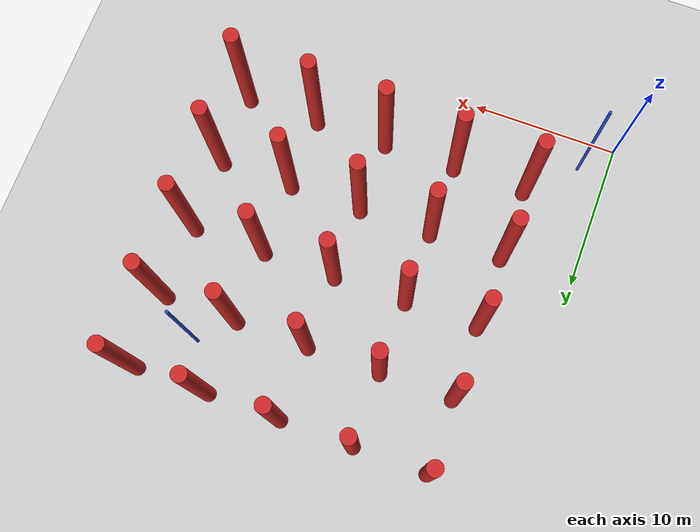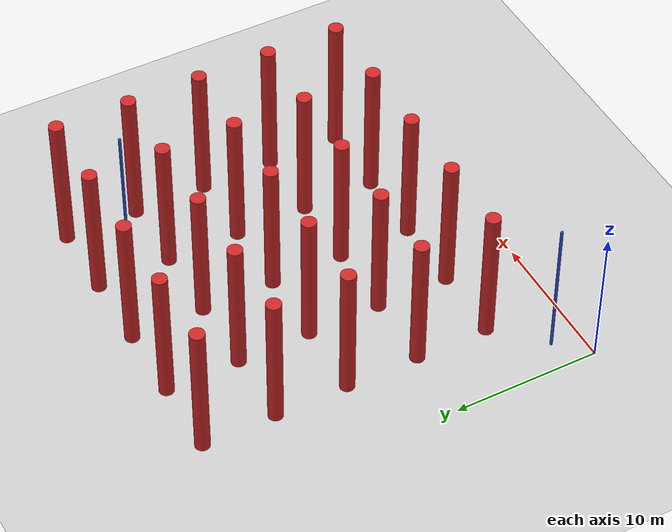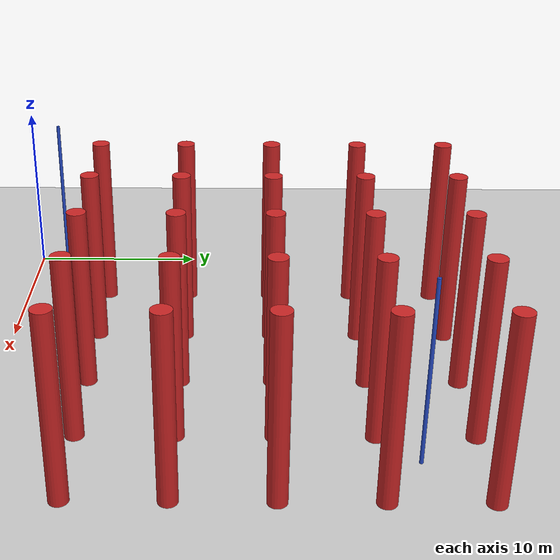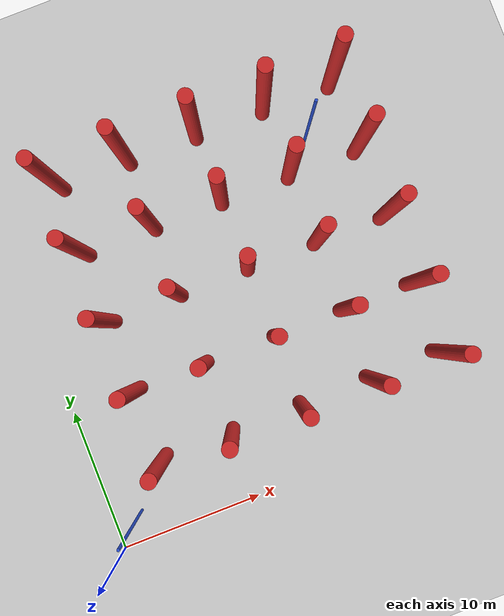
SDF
<sdf version='1.4'>
  <world name='default'>
  <include>
    <uri>model://sun</uri>
  </include>
    <model name='ground_plane'>
      <static>1</static>
      <link name='link'>
        <collision name='collision'>
          <geometry>
            <plane>
              <normal>0 0 1</normal>
              <size>100 100</size>
            </plane>
          </geometry>
          <surface>
            <friction>
              <ode>
                <mu>100</mu>
                <mu2>50</mu2>
              </ode>
            </friction>
            <bounce/>
            <contact>
              <ode/>
            </contact>
          </surface>
          <max_contacts>9</max_contacts>
        </collision>
        <visual name='visual'>
          <cast_shadows>0</cast_shadows>
          <geometry>
            <plane>
              <normal>0 0 1</normal>
              <size>100 100</size>
            </plane>
          </geometry>
          <material>
            <script>
              <uri>file://media/materials/scripts/gazebo.material</uri>
              <name>Gazebo/Grey</name>
            </script>
          </material>
        </visual>
        <velocity_decay>
          <linear>0</linear>
          <angular>0</angular>
        </velocity_decay>
        <self_collide>0</self_collide>
        <kinematic>0</kinematic>
        <gravity>1</gravity>
      </link>
    </model>
    <physics type='ode'>
      <max_step_size>0.01</max_step_size>
      <real_time_factor>1</real_time_factor>
      <real_time_update_rate>100</real_time_update_rate>
      <gravity>0 0 -9.8</gravity>
    </physics>
    <scene>
      <ambient>0.10 0.10 0.10 1</ambient>
      <background>0.7 0.7 0.7 1</background>
      <shadows>1</shadows>
    </scene>
    <spherical_coordinates>
      <surface_model>EARTH_WGS84</surface_model>
      <latitude_deg>0</latitude_deg>
      <longitude_deg>0</longitude_deg>
      <elevation>0</elevation>
      <heading_deg>0</heading_deg>
    </spherical_coordinates>
    <model name='cylinder_1'>
      <pose>5 5 5 0 -0 0</pose>
      <link name='link'>
        <inertial>
          <mass>1000</mass>
          <inertia>
            <ixx>1000</ixx>
            <ixy>0</ixy>
            <ixz>0</ixz>
            <iyy>1000</iyy>
            <iyz>0</iyz>
            <izz>1000</izz>
          </inertia>
        </inertial>
        <collision name='collision'>
          <geometry>
            <cylinder>
              <radius>0.5</radius>
              <length>10</length>
            </cylinder>
          </geometry>
          <max_contacts>9</max_contacts>
          <surface>
            <bounce/>
            <friction>
              <ode/>
            </friction>
            <contact>
              <ode/>
            </contact>
          </surface>
        </collision>
        <visual name='visual'>
          <geometry>
            <cylinder>
              <radius>0.5</radius>
              <length>10</length>
            </cylinder>
          </geometry>
          <material>
            <script>
              <uri>file://media/materials/scripts/gazebo.material</uri>
              <name>Gazebo/Red</name>
            </script>
          </material>
        </visual>
        <velocity_decay>
          <linear>0</linear>
          <angular>0</angular>
        </velocity_decay>
        <self_collide>0</self_collide>
        <kinematic>0</kinematic>
        <gravity>1</gravity>
      </link>
      <static>1</static>
    </model>
    <model name='cylinder_2'>
      <pose>5 10 5 0 -0 0</pose>
      <link name='link'>
        <inertial>
          <mass>1000</mass>
          <inertia>
            <ixx>1000</ixx>
            <ixy>0</ixy>
            <ixz>0</ixz>
            <iyy>1000</iyy>
            <iyz>0</iyz>
            <izz>1000</izz>
          </inertia>
        </inertial>
        <collision name='collision'>
          <geometry>
            <cylinder>
              <radius>0.5</radius>
              <length>10</length>
            </cylinder>
          </geometry>
          <max_contacts>9</max_contacts>
          <surface>
            <bounce/>
            <friction>
              <ode/>
            </friction>
            <contact>
              <ode/>
            </contact>
          </surface>
        </collision>
        <visual name='visual'>
          <geometry>
            <cylinder>
              <radius>0.5</radius>
              <length>10</length>
            </cylinder>
          </geometry>
          <material>
            <script>
              <uri>file://media/materials/scripts/gazebo.material</uri>
              <name>Gazebo/Red</name>
            </script>
          </material>
        </visual>
        <velocity_decay>
          <linear>0</linear>
          <angular>0</angular>
        </velocity_decay>
        <self_collide>0</self_collide>
        <kinematic>0</kinematic>
        <gravity>1</gravity>
      </link>
      <static>1</static>
    </model>
    <model name='cylinder_3'>
      <pose>5 15 5 0 -0 0</pose>
      <link name='link'>
        <inertial>
          <mass>1000</mass>
          <inertia>
            <ixx>1000</ixx>
            <ixy>0</ixy>
            <ixz>0</ixz>
            <iyy>1000</iyy>
            <iyz>0</iyz>
            <izz>1000</izz>
          </inertia>
        </inertial>
        <collision name='collision'>
          <geometry>
            <cylinder>
              <radius>0.5</radius>
              <length>10</length>
            </cylinder>
          </geometry>
          <max_contacts>9</max_contacts>
          <surface>
            <bounce/>
            <friction>
              <ode/>
            </friction>
            <contact>
              <ode/>
            </contact>
          </surface>
        </collision>
        <visual name='visual'>
          <geometry>
            <cylinder>
              <radius>0.5</radius>
              <length>10</length>
            </cylinder>
          </geometry>
          <material>
            <script>
              <uri>file://media/materials/scripts/gazebo.material</uri>
              <name>Gazebo/Red</name>
            </script>
          </material>
        </visual>
        <velocity_decay>
          <linear>0</linear>
          <angular>0</angular>
        </velocity_decay>
        <self_collide>0</self_collide>
        <kinematic>0</kinematic>
        <gravity>1</gravity>
      </link>
      <static>1</static>
    </model>
    <model name='cylinder_4'>
      <pose>5 20 5 0 -0 0</pose>
      <link name='link'>
        <inertial>
          <mass>1000</mass>
          <inertia>
            <ixx>1000</ixx>
            <ixy>0</ixy>
            <ixz>0</ixz>
            <iyy>1000</iyy>
            <iyz>0</iyz>
            <izz>1000</izz>
          </inertia>
        </inertial>
        <collision name='collision'>
          <geometry>
            <cylinder>
              <radius>0.5</radius>
              <length>10</length>
            </cylinder>
          </geometry>
          <max_contacts>9</max_contacts>
          <surface>
            <bounce/>
            <friction>
              <ode/>
            </friction>
            <contact>
              <ode/>
            </contact>
          </surface>
        </collision>
        <visual name='visual'>
          <geometry>
            <cylinder>
              <radius>0.5</radius>
              <length>10</length>
            </cylinder>
          </geometry>
          <material>
            <script>
              <uri>file://media/materials/scripts/gazebo.material</uri>
              <name>Gazebo/Red</name>
            </script>
          </material>
        </visual>
        <velocity_decay>
          <linear>0</linear>
          <angular>0</angular>
        </velocity_decay>
        <self_collide>0</self_collide>
        <kinematic>0</kinematic>
        <gravity>1</gravity>
      </link>
      <static>1</static>
    </model>
    <model name='cylinder_5'>
      <pose>5 25 5 0 -0 0</pose>
      <link name='link'>
        <inertial>
          <mass>1000</mass>
          <inertia>
            <ixx>1000</ixx>
            <ixy>0</ixy>
            <ixz>0</ixz>
            <iyy>1000</iyy>
            <iyz>0</iyz>
            <izz>1000</izz>
          </inertia>
        </inertial>
        <collision name='collision'>
          <geometry>
            <cylinder>
              <radius>0.5</radius>
              <length>10</length>
            </cylinder>
          </geometry>
          <max_contacts>9</max_contacts>
          <surface>
            <bounce/>
            <friction>
              <ode/>
            </friction>
            <contact>
              <ode/>
            </contact>
          </surface>
        </collision>
        <visual name='visual'>
          <geometry>
            <cylinder>
              <radius>0.5</radius>
              <length>10</length>
            </cylinder>
          </geometry>
          <material>
            <script>
              <uri>file://media/materials/scripts/gazebo.material</uri>
              <name>Gazebo/Red</name>
            </script>
          </material>
        </visual>
        <velocity_decay>
          <linear>0</linear>
          <angular>0</angular>
        </velocity_decay>
        <self_collide>0</self_collide>
        <kinematic>0</kinematic>
        <gravity>1</gravity>
      </link>
      <static>1</static>
    </model>
    <model name='cylinder_6'>
      <pose>10 5 5 0 -0 0</pose>
      <link name='link'>
        <inertial>
          <mass>1000</mass>
          <inertia>
            <ixx>1000</ixx>
            <ixy>0</ixy>
            <ixz>0</ixz>
            <iyy>1000</iyy>
            <iyz>0</iyz>
            <izz>1000</izz>
          </inertia>
        </inertial>
        <collision name='collision'>
          <geometry>
            <cylinder>
              <radius>0.5</radius>
              <length>10</length>
            </cylinder>
          </geometry>
          <max_contacts>9</max_contacts>
          <surface>
            <bounce/>
            <friction>
              <ode/>
            </friction>
            <contact>
              <ode/>
            </contact>
          </surface>
        </collision>
        <visual name='visual'>
          <geometry>
            <cylinder>
              <radius>0.5</radius>
              <length>10</length>
            </cylinder>
          </geometry>
          <material>
            <script>
              <uri>file://media/materials/scripts/gazebo.material</uri>
              <name>Gazebo/Red</name>
            </script>
          </material>
        </visual>
        <velocity_decay>
          <linear>0</linear>
          <angular>0</angular>
        </velocity_decay>
        <self_collide>0</self_collide>
        <kinematic>0</kinematic>
        <gravity>1</gravity>
      </link>
      <static>1</static>
    </model>
    <model name='cylinder_7'>
      <pose>10 10 5 0 -0 0</pose>
      <link name='link'>
        <inertial>
          <mass>1000</mass>
          <inertia>
            <ixx>1000</ixx>
            <ixy>0</ixy>
            <ixz>0</ixz>
            <iyy>1000</iyy>
            <iyz>0</iyz>
            <izz>1000</izz>
          </inertia>
        </inertial>
        <collision name='collision'>
          <geometry>
            <cylinder>
              <radius>0.5</radius>
              <length>10</length>
            </cylinder>
          </geometry>
          <max_contacts>9</max_contacts>
          <surface>
            <bounce/>
            <friction>
              <ode/>
            </friction>
            <contact>
              <ode/>
            </contact>
          </surface>
        </collision>
        <visual name='visual'>
          <geometry>
            <cylinder>
              <radius>0.5</radius>
              <length>10</length>
            </cylinder>
          </geometry>
          <material>
            <script>
              <uri>file://media/materials/scripts/gazebo.material</uri>
              <name>Gazebo/Red</name>
            </script>
          </material>
        </visual>
        <velocity_decay>
          <linear>0</linear>
          <angular>0</angular>
        </velocity_decay>
        <self_collide>0</self_collide>
        <kinematic>0</kinematic>
        <gravity>1</gravity>
      </link>
      <static>1</static>
    </model>
    <model name='cylinder_8'>
      <pose>10 15 5 0 -0 0</pose>
      <link name='link'>
        <inertial>
          <mass>1000</mass>
          <inertia>
            <ixx>1000</ixx>
            <ixy>0</ixy>
            <ixz>0</ixz>
            <iyy>1000</iyy>
            <iyz>0</iyz>
            <izz>1000</izz>
          </inertia>
        </inertial>
        <collision name='collision'>
          <geometry>
            <cylinder>
              <radius>0.5</radius>
              <length>10</length>
            </cylinder>
          </geometry>
          <max_contacts>9</max_contacts>
          <surface>
            <bounce/>
            <friction>
              <ode/>
            </friction>
            <contact>
              <ode/>
            </contact>
          </surface>
        </collision>
        <visual name='visual'>
          <geometry>
            <cylinder>
              <radius>0.5</radius>
              <length>10</length>
            </cylinder>
          </geometry>
          <material>
            <script>
              <uri>file://media/materials/scripts/gazebo.material</uri>
              <name>Gazebo/Red</name>
            </script>
          </material>
        </visual>
        <velocity_decay>
          <linear>0</linear>
          <angular>0</angular>
        </velocity_decay>
        <self_collide>0</self_collide>
        <kinematic>0</kinematic>
        <gravity>1</gravity>
      </link>
      <static>1</static>
    </model>
    <model name='cylinder_9'>
      <pose>10 20 5 0 -0 0</pose>
      <link name='link'>
        <inertial>
          <mass>1000</mass>
          <inertia>
            <ixx>1000</ixx>
            <ixy>0</ixy>
            <ixz>0</ixz>
            <iyy>1000</iyy>
            <iyz>0</iyz>
            <izz>1000</izz>
          </inertia>
        </inertial>
        <collision name='collision'>
          <geometry>
            <cylinder>
              <radius>0.5</radius>
              <length>10</length>
            </cylinder>
          </geometry>
          <max_contacts>9</max_contacts>
          <surface>
            <bounce/>
            <friction>
              <ode/>
            </friction>
            <contact>
              <ode/>
            </contact>
          </surface>
        </collision>
        <visual name='visual'>
          <geometry>
            <cylinder>
              <radius>0.5</radius>
              <length>10</length>
            </cylinder>
          </geometry>
          <material>
            <script>
              <uri>file://media/materials/scripts/gazebo.material</uri>
              <name>Gazebo/Red</name>
            </script>
          </material>
        </visual>
        <velocity_decay>
          <linear>0</linear>
          <angular>0</angular>
        </velocity_decay>
        <self_collide>0</self_collide>
        <kinematic>0</kinematic>
        <gravity>1</gravity>
      </link>
      <static>1</static>
    </model>
    <model name='cylinder_10'>
      <pose>10 25 5 0 -0 0</pose>
      <link name='link'>
        <inertial>
          <mass>1000</mass>
          <inertia>
            <ixx>1000</ixx>
            <ixy>0</ixy>
            <ixz>0</ixz>
            <iyy>1000</iyy>
            <iyz>0</iyz>
            <izz>1000</izz>
          </inertia>
        </inertial>
        <collision name='collision'>
          <geometry>
            <cylinder>
              <radius>0.5</radius>
              <length>10</length>
            </cylinder>
          </geometry>
          <max_contacts>9</max_contacts>
          <surface>
            <bounce/>
            <friction>
              <ode/>
            </friction>
            <contact>
              <ode/>
            </contact>
          </surface>
        </collision>
        <visual name='visual'>
          <geometry>
            <cylinder>
              <radius>0.5</radius>
              <length>10</length>
            </cylinder>
          </geometry>
          <material>
            <script>
              <uri>file://media/materials/scripts/gazebo.material</uri>
              <name>Gazebo/Red</name>
            </script>
          </material>
        </visual>
        <velocity_decay>
          <linear>0</linear>
          <angular>0</angular>
        </velocity_decay>
        <self_collide>0</self_collide>
        <kinematic>0</kinematic>
        <gravity>1</gravity>
      </link>
      <static>1</static>
    </model>
    <model name='cylinder_11'>
      <pose>15 5 5 0 -0 0</pose>
      <link name='link'>
        <inertial>
          <mass>1000</mass>
          <inertia>
            <ixx>1000</ixx>
            <ixy>0</ixy>
            <ixz>0</ixz>
            <iyy>1000</iyy>
            <iyz>0</iyz>
            <izz>1000</izz>
          </inertia>
        </inertial>
        <collision name='collision'>
          <geometry>
            <cylinder>
              <radius>0.5</radius>
              <length>10</length>
            </cylinder>
          </geometry>
          <max_contacts>9</max_contacts>
          <surface>
            <bounce/>
            <friction>
              <ode/>
            </friction>
            <contact>
              <ode/>
            </contact>
          </surface>
        </collision>
        <visual name='visual'>
          <geometry>
            <cylinder>
              <radius>0.5</radius>
              <length>10</length>
            </cylinder>
          </geometry>
          <material>
            <script>
              <uri>file://media/materials/scripts/gazebo.material</uri>
              <name>Gazebo/Red</name>
            </script>
          </material>
        </visual>
        <velocity_decay>
          <linear>0</linear>
          <angular>0</angular>
        </velocity_decay>
        <self_collide>0</self_collide>
        <kinematic>0</kinematic>
        <gravity>1</gravity>
      </link>
      <static>1</static>
    </model>
    <model name='cylinder_12'>
      <pose>15 10 5 0 -0 0</pose>
      <link name='link'>
        <inertial>
          <mass>1000</mass>
          <inertia>
            <ixx>1000</ixx>
            <ixy>0</ixy>
            <ixz>0</ixz>
            <iyy>1000</iyy>
            <iyz>0</iyz>
            <izz>1000</izz>
          </inertia>
        </inertial>
        <collision name='collision'>
          <geometry>
            <cylinder>
              <radius>0.5</radius>
              <length>10</length>
            </cylinder>
          </geometry>
          <max_contacts>9</max_contacts>
          <surface>
            <bounce/>
            <friction>
              <ode/>
            </friction>
            <contact>
              <ode/>
            </contact>
          </surface>
        </collision>
        <visual name='visual'>
          <geometry>
            <cylinder>
              <radius>0.5</radius>
              <length>10</length>
            </cylinder>
          </geometry>
          <material>
            <script>
              <uri>file://media/materials/scripts/gazebo.material</uri>
              <name>Gazebo/Red</name>
            </script>
          </material>
        </visual>
        <velocity_decay>
          <linear>0</linear>
          <angular>0</angular>
        </velocity_decay>
        <self_collide>0</self_collide>
        <kinematic>0</kinematic>
        <gravity>1</gravity>
      </link>
      <static>1</static>
    </model>
    <model name='cylinder_13'>
      <pose>15 15 5 0 -0 0</pose>
      <link name='link'>
        <inertial>
          <mass>1000</mass>
          <inertia>
            <ixx>1000</ixx>
            <ixy>0</ixy>
            <ixz>0</ixz>
            <iyy>1000</iyy>
            <iyz>0</iyz>
            <izz>1000</izz>
          </inertia>
        </inertial>
        <collision name='collision'>
          <geometry>
            <cylinder>
              <radius>0.5</radius>
              <length>10</length>
            </cylinder>
          </geometry>
          <max_contacts>9</max_contacts>
          <surface>
            <bounce/>
            <friction>
              <ode/>
            </friction>
            <contact>
              <ode/>
            </contact>
          </surface>
        </collision>
        <visual name='visual'>
          <geometry>
            <cylinder>
              <radius>0.5</radius>
              <length>10</length>
            </cylinder>
          </geometry>
          <material>
            <script>
              <uri>file://media/materials/scripts/gazebo.material</uri>
              <name>Gazebo/Red</name>
            </script>
          </material>
        </visual>
        <velocity_decay>
          <linear>0</linear>
          <angular>0</angular>
        </velocity_decay>
        <self_collide>0</self_collide>
        <kinematic>0</kinematic>
        <gravity>1</gravity>
      </link>
      <static>1</static>
    </model>
    <model name='cylinder_14'>
      <pose>15 20 5 0 -0 0</pose>
      <link name='link'>
        <inertial>
          <mass>1000</mass>
          <inertia>
            <ixx>1000</ixx>
            <ixy>0</ixy>
            <ixz>0</ixz>
            <iyy>1000</iyy>
            <iyz>0</iyz>
            <izz>1000</izz>
          </inertia>
        </inertial>
        <collision name='collision'>
          <geometry>
            <cylinder>
              <radius>0.5</radius>
              <length>10</length>
            </cylinder>
          </geometry>
          <max_contacts>9</max_contacts>
          <surface>
            <bounce/>
            <friction>
              <ode/>
            </friction>
            <contact>
              <ode/>
            </contact>
          </surface>
        </collision>
        <visual name='visual'>
          <geometry>
            <cylinder>
              <radius>0.5</radius>
              <length>10</length>
            </cylinder>
          </geometry>
          <material>
            <script>
              <uri>file://media/materials/scripts/gazebo.material</uri>
              <name>Gazebo/Red</name>
            </script>
          </material>
        </visual>
        <velocity_decay>
          <linear>0</linear>
          <angular>0</angular>
        </velocity_decay>
        <self_collide>0</self_collide>
        <kinematic>0</kinematic>
        <gravity>1</gravity>
      </link>
      <static>1</static>
    </model>
    <model name='cylinder_15'>
      <pose>15 25 5 0 -0 0</pose>
      <link name='link'>
        <inertial>
          <mass>1000</mass>
          <inertia>
            <ixx>1000</ixx>
            <ixy>0</ixy>
            <ixz>0</ixz>
            <iyy>1000</iyy>
            <iyz>0</iyz>
            <izz>1000</izz>
          </inertia>
        </inertial>
        <collision name='collision'>
          <geometry>
            <cylinder>
              <radius>0.5</radius>
              <length>10</length>
            </cylinder>
          </geometry>
          <max_contacts>9</max_contacts>
          <surface>
            <bounce/>
            <friction>
              <ode/>
            </friction>
            <contact>
              <ode/>
            </contact>
          </surface>
        </collision>
        <visual name='visual'>
          <geometry>
            <cylinder>
              <radius>0.5</radius>
              <length>10</length>
            </cylinder>
          </geometry>
          <material>
            <script>
              <uri>file://media/materials/scripts/gazebo.material</uri>
              <name>Gazebo/Red</name>
            </script>
          </material>
        </visual>
        <velocity_decay>
          <linear>0</linear>
          <angular>0</angular>
        </velocity_decay>
        <self_collide>0</self_collide>
        <kinematic>0</kinematic>
        <gravity>1</gravity>
      </link>
      <static>1</static>
    </model>
    <model name='cylinder_16'>
      <pose>20 5 5 0 -0 0</pose>
      <link name='link'>
        <inertial>
          <mass>1000</mass>
          <inertia>
            <ixx>1000</ixx>
            <ixy>0</ixy>
            <ixz>0</ixz>
            <iyy>1000</iyy>
            <iyz>0</iyz>
            <izz>1000</izz>
          </inertia>
        </inertial>
        <collision name='collision'>
          <geometry>
            <cylinder>
              <radius>0.5</radius>
              <length>10</length>
            </cylinder>
          </geometry>
          <max_contacts>9</max_contacts>
          <surface>
            <bounce/>
            <friction>
              <ode/>
            </friction>
            <contact>
              <ode/>
            </contact>
          </surface>
        </collision>
        <visual name='visual'>
          <geometry>
            <cylinder>
              <radius>0.5</radius>
              <length>10</length>
            </cylinder>
          </geometry>
          <material>
            <script>
              <uri>file://media/materials/scripts/gazebo.material</uri>
              <name>Gazebo/Red</name>
            </script>
          </material>
        </visual>
        <velocity_decay>
          <linear>0</linear>
          <angular>0</angular>
        </velocity_decay>
        <self_collide>0</self_collide>
        <kinematic>0</kinematic>
        <gravity>1</gravity>
      </link>
      <static>1</static>
    </model>
    <model name='cylinder_17'>
      <pose>20 10 5 0 -0 0</pose>
      <link name='link'>
        <inertial>
          <mass>1000</mass>
          <inertia>
            <ixx>1000</ixx>
            <ixy>0</ixy>
            <ixz>0</ixz>
            <iyy>1000</iyy>
            <iyz>0</iyz>
            <izz>1000</izz>
          </inertia>
        </inertial>
        <collision name='collision'>
          <geometry>
            <cylinder>
              <radius>0.5</radius>
              <length>10</length>
            </cylinder>
          </geometry>
          <max_contacts>9</max_contacts>
          <surface>
            <bounce/>
            <friction>
              <ode/>
            </friction>
            <contact>
              <ode/>
            </contact>
          </surface>
        </collision>
        <visual name='visual'>
          <geometry>
            <cylinder>
              <radius>0.5</radius>
              <length>10</length>
            </cylinder>
          </geometry>
          <material>
            <script>
              <uri>file://media/materials/scripts/gazebo.material</uri>
              <name>Gazebo/Red</name>
            </script>
          </material>
        </visual>
        <velocity_decay>
          <linear>0</linear>
          <angular>0</angular>
        </velocity_decay>
        <self_collide>0</self_collide>
        <kinematic>0</kinematic>
        <gravity>1</gravity>
      </link>
      <static>1</static>
    </model>
    <model name='cylinder_18'>
      <pose>20 15 5 0 -0 0</pose>
      <link name='link'>
        <inertial>
          <mass>1000</mass>
          <inertia>
            <ixx>1000</ixx>
            <ixy>0</ixy>
            <ixz>0</ixz>
            <iyy>1000</iyy>
            <iyz>0</iyz>
            <izz>1000</izz>
          </inertia>
        </inertial>
        <collision name='collision'>
          <geometry>
            <cylinder>
              <radius>0.5</radius>
              <length>10</length>
            </cylinder>
          </geometry>
          <max_contacts>9</max_contacts>
          <surface>
            <bounce/>
            <friction>
              <ode/>
            </friction>
            <contact>
              <ode/>
            </contact>
          </surface>
        </collision>
        <visual name='visual'>
          <geometry>
            <cylinder>
              <radius>0.5</radius>
              <length>10</length>
            </cylinder>
          </geometry>
          <material>
            <script>
              <uri>file://media/materials/scripts/gazebo.material</uri>
              <name>Gazebo/Red</name>
            </script>
          </material>
        </visual>
        <velocity_decay>
          <linear>0</linear>
          <angular>0</angular>
        </velocity_decay>
        <self_collide>0</self_collide>
        <kinematic>0</kinematic>
        <gravity>1</gravity>
      </link>
      <static>1</static>
    </model>
    <model name='cylinder_19'>
      <pose>20 20 5 0 -0 0</pose>
      <link name='link'>
        <inertial>
          <mass>1000</mass>
          <inertia>
            <ixx>1000</ixx>
            <ixy>0</ixy>
            <ixz>0</ixz>
            <iyy>1000</iyy>
            <iyz>0</iyz>
            <izz>1000</izz>
          </inertia>
        </inertial>
        <collision name='collision'>
          <geometry>
            <cylinder>
              <radius>0.5</radius>
              <length>10</length>
            </cylinder>
          </geometry>
          <max_contacts>9</max_contacts>
          <surface>
            <bounce/>
            <friction>
              <ode/>
            </friction>
            <contact>
              <ode/>
            </contact>
          </surface>
        </collision>
        <visual name='visual'>
          <geometry>
            <cylinder>
              <radius>0.5</radius>
              <length>10</length>
            </cylinder>
          </geometry>
          <material>
            <script>
              <uri>file://media/materials/scripts/gazebo.material</uri>
              <name>Gazebo/Red</name>
            </script>
          </material>
        </visual>
        <velocity_decay>
          <linear>0</linear>
          <angular>0</angular>
        </velocity_decay>
        <self_collide>0</self_collide>
        <kinematic>0</kinematic>
        <gravity>1</gravity>
      </link>
      <static>1</static>
    </model>
    <model name='cylinder_20'>
      <pose>20 25 5 0 -0 0</pose>
      <link name='link'>
        <inertial>
          <mass>1000</mass>
          <inertia>
            <ixx>1000</ixx>
            <ixy>0</ixy>
            <ixz>0</ixz>
            <iyy>1000</iyy>
            <iyz>0</iyz>
            <izz>1000</izz>
          </inertia>
        </inertial>
        <collision name='collision'>
          <geometry>
            <cylinder>
              <radius>0.5</radius>
              <length>10</length>
            </cylinder>
          </geometry>
          <max_contacts>9</max_contacts>
          <surface>
            <bounce/>
            <friction>
              <ode/>
            </friction>
            <contact>
              <ode/>
            </contact>
          </surface>
        </collision>
        <visual name='visual'>
          <geometry>
            <cylinder>
              <radius>0.5</radius>
              <length>10</length>
            </cylinder>
          </geometry>
          <material>
            <script>
              <uri>file://media/materials/scripts/gazebo.material</uri>
              <name>Gazebo/Red</name>
            </script>
          </material>
        </visual>
        <velocity_decay>
          <linear>0</linear>
          <angular>0</angular>
        </velocity_decay>
        <self_collide>0</self_collide>
        <kinematic>0</kinematic>
        <gravity>1</gravity>
      </link>
      <static>1</static>
    </model>
    <model name='cylinder_21'>
      <pose>25 5 5 0 -0 0</pose>
      <link name='link'>
        <inertial>
          <mass>1000</mass>
          <inertia>
            <ixx>1000</ixx>
            <ixy>0</ixy>
            <ixz>0</ixz>
            <iyy>1000</iyy>
            <iyz>0</iyz>
            <izz>1000</izz>
          </inertia>
        </inertial>
        <collision name='collision'>
          <geometry>
            <cylinder>
              <radius>0.5</radius>
              <length>10</length>
            </cylinder>
          </geometry>
          <max_contacts>9</max_contacts>
          <surface>
            <bounce/>
            <friction>
              <ode/>
            </friction>
            <contact>
              <ode/>
            </contact>
          </surface>
        </collision>
        <visual name='visual'>
          <geometry>
            <cylinder>
              <radius>0.5</radius>
              <length>10</length>
            </cylinder>
          </geometry>
          <material>
            <script>
              <uri>file://media/materials/scripts/gazebo.material</uri>
              <name>Gazebo/Red</name>
            </script>
          </material>
        </visual>
        <velocity_decay>
          <linear>0</linear>
          <angular>0</angular>
        </velocity_decay>
        <self_collide>0</self_collide>
        <kinematic>0</kinematic>
        <gravity>1</gravity>
      </link>
      <static>1</static>
    </model>
    <model name='cylinder_22'>
      <pose>25 10 5 0 -0 0</pose>
      <link name='link'>
        <inertial>
          <mass>1000</mass>
          <inertia>
            <ixx>1000</ixx>
            <ixy>0</ixy>
            <ixz>0</ixz>
            <iyy>1000</iyy>
            <iyz>0</iyz>
            <izz>1000</izz>
          </inertia>
        </inertial>
        <collision name='collision'>
          <geometry>
            <cylinder>
              <radius>0.5</radius>
              <length>10</length>
            </cylinder>
          </geometry>
          <max_contacts>9</max_contacts>
          <surface>
            <bounce/>
            <friction>
              <ode/>
            </friction>
            <contact>
              <ode/>
            </contact>
          </surface>
        </collision>
        <visual name='visual'>
          <geometry>
            <cylinder>
              <radius>0.5</radius>
              <length>10</length>
            </cylinder>
          </geometry>
          <material>
            <script>
              <uri>file://media/materials/scripts/gazebo.material</uri>
              <name>Gazebo/Red</name>
            </script>
          </material>
        </visual>
        <velocity_decay>
          <linear>0</linear>
          <angular>0</angular>
        </velocity_decay>
        <self_collide>0</self_collide>
        <kinematic>0</kinematic>
        <gravity>1</gravity>
      </link>
      <static>1</static>
    </model>
    <model name='cylinder_23'>
      <pose>25 15 5 0 -0 0</pose>
      <link name='link'>
        <inertial>
          <mass>1000</mass>
          <inertia>
            <ixx>1000</ixx>
            <ixy>0</ixy>
            <ixz>0</ixz>
            <iyy>1000</iyy>
            <iyz>0</iyz>
            <izz>1000</izz>
          </inertia>
        </inertial>
        <collision name='collision'>
          <geometry>
            <cylinder>
              <radius>0.5</radius>
              <length>10</length>
            </cylinder>
          </geometry>
          <max_contacts>9</max_contacts>
          <surface>
            <bounce/>
            <friction>
              <ode/>
            </friction>
            <contact>
              <ode/>
            </contact>
          </surface>
        </collision>
        <visual name='visual'>
          <geometry>
            <cylinder>
              <radius>0.5</radius>
              <length>10</length>
            </cylinder>
          </geometry>
          <material>
            <script>
              <uri>file://media/materials/scripts/gazebo.material</uri>
              <name>Gazebo/Red</name>
            </script>
          </material>
        </visual>
        <velocity_decay>
          <linear>0</linear>
          <angular>0</angular>
        </velocity_decay>
        <self_collide>0</self_collide>
        <kinematic>0</kinematic>
        <gravity>1</gravity>
      </link>
      <static>1</static>
    </model>
    <model name='cylinder_24'>
      <pose>25 20 5 0 -0 0</pose>
      <link name='link'>
        <inertial>
          <mass>1000</mass>
          <inertia>
            <ixx>1000</ixx>
            <ixy>0</ixy>
            <ixz>0</ixz>
            <iyy>1000</iyy>
            <iyz>0</iyz>
            <izz>1000</izz>
          </inertia>
        </inertial>
        <collision name='collision'>
          <geometry>
            <cylinder>
              <radius>0.5</radius>
              <length>10</length>
            </cylinder>
          </geometry>
          <max_contacts>9</max_contacts>
          <surface>
            <bounce/>
            <friction>
              <ode/>
            </friction>
            <contact>
              <ode/>
            </contact>
          </surface>
        </collision>
        <visual name='visual'>
          <geometry>
            <cylinder>
              <radius>0.5</radius>
              <length>10</length>
            </cylinder>
          </geometry>
          <material>
            <script>
              <uri>file://media/materials/scripts/gazebo.material</uri>
              <name>Gazebo/Red</name>
            </script>
          </material>
        </visual>
        <velocity_decay>
          <linear>0</linear>
          <angular>0</angular>
        </velocity_decay>
        <self_collide>0</self_collide>
        <kinematic>0</kinematic>
        <gravity>1</gravity>
      </link>
      <static>1</static>
    </model>
    <model name='cylinder_24'>
      <pose>25 25 5 0 -0 0</pose>
      <link name='link'>
        <inertial>
          <mass>1000</mass>
          <inertia>
            <ixx>1000</ixx>
            <ixy>0</ixy>
            <ixz>0</ixz>
            <iyy>1000</iyy>
            <iyz>0</iyz>
            <izz>1000</izz>
          </inertia>
        </inertial>
        <collision name='collision'>
          <geometry>
            <cylinder>
              <radius>0.5</radius>
              <length>10</length>
            </cylinder>
          </geometry>
          <max_contacts>9</max_contacts>
          <surface>
            <bounce/>
            <friction>
              <ode/>
            </friction>
            <contact>
              <ode/>
            </contact>
          </surface>
        </collision>
        <visual name='visual'>
          <geometry>
            <cylinder>
              <radius>0.5</radius>
              <length>10</length>
            </cylinder>
          </geometry>
          <material>
            <script>
              <uri>file://media/materials/scripts/gazebo.material</uri>
              <name>Gazebo/Red</name>
            </script>
          </material>
        </visual>
        <velocity_decay>
          <linear>0</linear>
          <angular>0</angular>
        </velocity_decay>
        <self_collide>0</self_collide>
        <kinematic>0</kinematic>
        <gravity>1</gravity>
      </link>
      <static>1</static>
    </model>
    <model name='start'>
      <pose>2 2 5 0 -0 0</pose>
      <link name='link'>
        <inertial>
          <mass>1000</mass>
          <inertia>
            <ixx>1000</ixx>
            <ixy>0</ixy>
            <ixz>0</ixz>
            <iyy>1000</iyy>
            <iyz>0</iyz>
            <izz>1000</izz>
          </inertia>
        </inertial>
        <visual name='visual'>
          <geometry>
            <cylinder>
              <radius>0.1</radius>
              <length>10</length>
            </cylinder>
          </geometry>
          <material>
            <script>
              <uri>file://media/materials/scripts/gazebo.material</uri>
              <name>Gazebo/Blue</name>
            </script>
          </material>
        </visual>
        <velocity_decay>
          <linear>0</linear>
          <angular>0</angular>
        </velocity_decay>
        <self_collide>0</self_collide>
        <kinematic>0</kinematic>
        <gravity>1</gravity>
      </link>
      <static>1</static>
    </model>
    <model name='start'>
      <pose>22 22 5 0 -0 0</pose>
      <link name='link'>
        <inertial>
          <mass>1000</mass>
          <inertia>
            <ixx>1000</ixx>
            <ixy>0</ixy>
            <ixz>0</ixz>
            <iyy>1000</iyy>
            <iyz>0</iyz>
            <izz>1000</izz>
          </inertia>
        </inertial>
        <visual name='visual'>
          <geometry>
            <cylinder>
              <radius>0.1</radius>
              <length>10</length>
            </cylinder>
          </geometry>
          <material>
            <script>
              <uri>file://media/materials/scripts/gazebo.material</uri>
              <name>Gazebo/Blue</name>
            </script>
          </material>
        </visual>
        <velocity_decay>
          <linear>0</linear>
          <angular>0</angular>
        </velocity_decay>
        <self_collide>0</self_collide>
        <kinematic>0</kinematic>
        <gravity>1</gravity>
      </link>
      <static>1</static>
    </model>
    <gui fullscreen='0'>
      <camera name='user_camera'>
        <pose>26.5424 -10.7085 28.7054 0 0.865796 2.096</pose>
        <view_controller>orbit</view_controller>
      </camera>
    </gui>
  </world>
</sdf>
